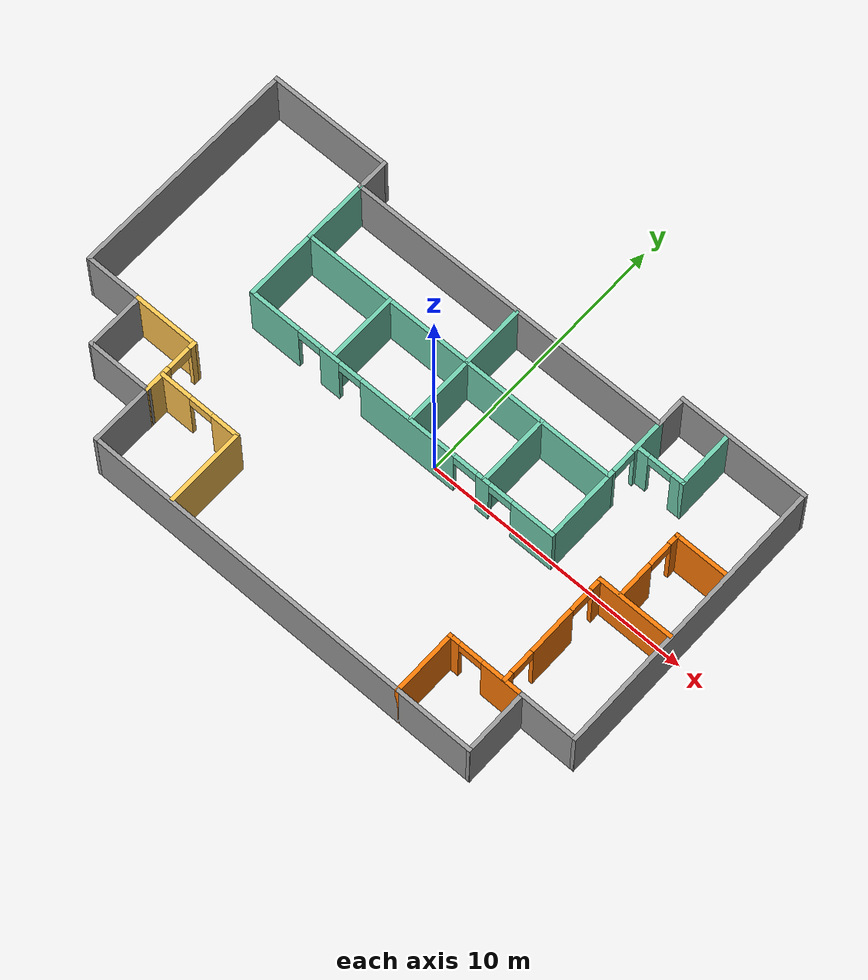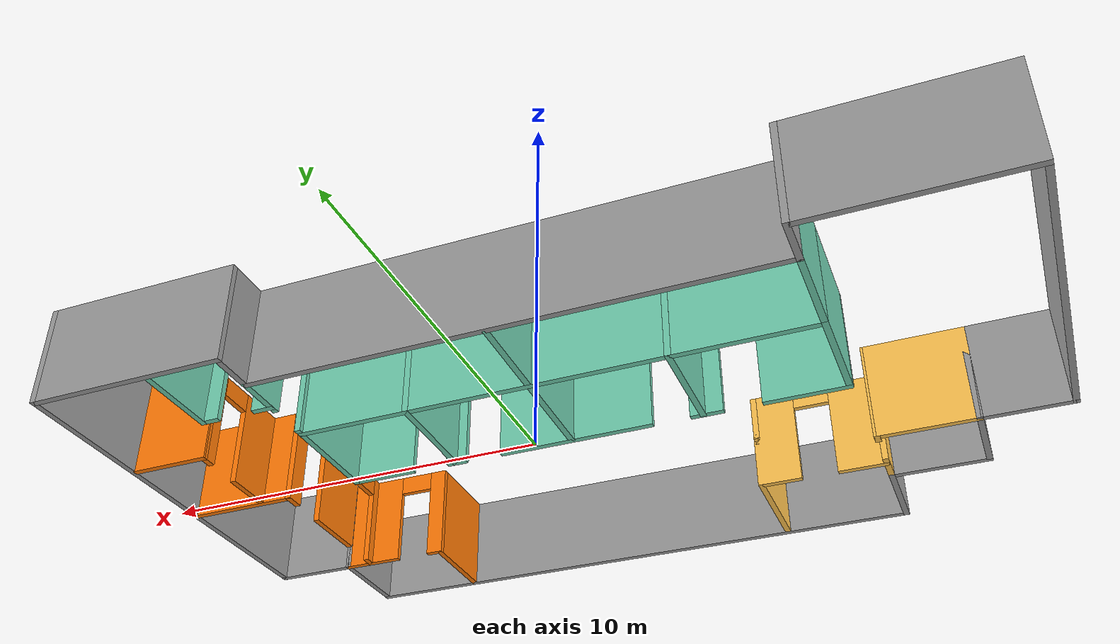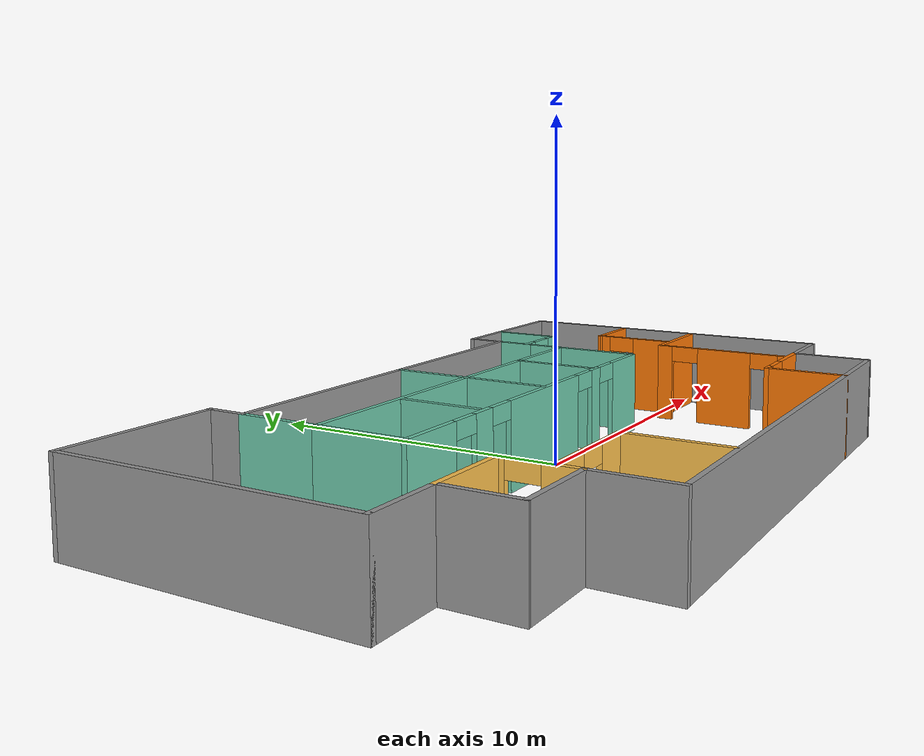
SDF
<?xml version='1.0'?>
<sdf version='1.6'>
  <model name='building'>
    <pose frame=''>-1.15045 -0.530763 0 0 -0 0</pose>
    <link name='Wall_0'>
      <collision name='Wall_0_Collision'>
        <geometry>
          <box>
            <size>15.25 0.15 2.5</size>
          </box>
        </geometry>
        <pose frame=''>0 0 1.25 0 -0 0</pose>
      </collision>
      <visual name='Wall_0_Visual'>
        <pose frame=''>0 0 1.25 0 -0 0</pose>
        <geometry>
          <box>
            <size>15.25 0.15 2.5</size>
          </box>
        </geometry>
        <material>
          <script>
            <uri>file://media/materials/scripts/gazebo.material</uri>
            <name>Gazebo/Grey</name>
          </script>
          <ambient>1 1 1 1</ambient>
        </material>
        <meta>
          <layer>0</layer>
        </meta>
      </visual>
      <pose frame=''>1.25 -6.47476 0 0 -0 0</pose>
    </link>
    <link name='Wall_10'>
      <collision name='Wall_10_Collision'>
        <geometry>
          <box>
            <size>4.75 0.15 2.5</size>
          </box>
        </geometry>
        <pose frame=''>0 0 1.25 0 -0 0</pose>
      </collision>
      <visual name='Wall_10_Visual'>
        <pose frame=''>0 0 1.25 0 -0 0</pose>
        <geometry>
          <box>
            <size>4.75 0.15 2.5</size>
          </box>
        </geometry>
        <material>
          <script>
            <uri>file://media/materials/scripts/gazebo.material</uri>
            <name>Gazebo/Grey</name>
          </script>
          <ambient>1 1 1 1</ambient>
        </material>
        <meta>
          <layer>0</layer>
        </meta>
      </visual>
      <pose frame=''>-8.6 6.47524 0 0 -0 3.14159</pose>
    </link>
    <link name='Wall_11'>
      <collision name='Wall_11_Collision'>
        <geometry>
          <box>
            <size>8.75 0.15 2.5</size>
          </box>
        </geometry>
        <pose frame=''>0 0 1.25 0 -0 0</pose>
      </collision>
      <visual name='Wall_11_Visual'>
        <pose frame=''>0 0 1.25 0 -0 0</pose>
        <geometry>
          <box>
            <size>8.75 0.15 2.5</size>
          </box>
        </geometry>
        <material>
          <script>
            <uri>file://media/materials/scripts/gazebo.material</uri>
            <name>Gazebo/Grey</name>
          </script>
          <ambient>1 1 1 1</ambient>
        </material>
        <meta>
          <layer>0</layer>
        </meta>
      </visual>
      <pose frame=''>-10.9 2.17524 0 0 0 -1.5708</pose>
    </link>
    <link name='Wall_16'>
      <collision name='Wall_16_Collision'>
        <geometry>
          <box>
            <size>2.25 0.15 2.5</size>
          </box>
        </geometry>
        <pose frame=''>0 0 1.25 0 -0 0</pose>
      </collision>
      <visual name='Wall_16_Visual'>
        <pose frame=''>0 0 1.25 0 -0 0</pose>
        <geometry>
          <box>
            <size>2.25 0.15 2.5</size>
          </box>
        </geometry>
        <material>
          <script>
            <uri>file://media/materials/scripts/gazebo.material</uri>
            <name>Gazebo/Grey</name>
          </script>
          <ambient>1 1 1 1</ambient>
        </material>
        <meta>
          <layer>0</layer>
        </meta>
      </visual>
      <pose frame=''>-9.85 -2.12476 0 0 -0 0</pose>
    </link>
    <link name='Wall_17'>
      <collision name='Wall_17_Collision'>
        <geometry>
          <box>
            <size>2.25 0.15 2.5</size>
          </box>
        </geometry>
        <pose frame=''>0 0 1.25 0 -0 0</pose>
      </collision>
      <visual name='Wall_17_Visual'>
        <pose frame=''>0 0 1.25 0 -0 0</pose>
        <geometry>
          <box>
            <size>2.25 0.15 2.5</size>
          </box>
        </geometry>
        <material>
          <script>
            <uri>file://media/materials/scripts/gazebo.material</uri>
            <name>Gazebo/Grey</name>
          </script>
          <ambient>1 1 1 1</ambient>
        </material>
        <meta>
          <layer>0</layer>
        </meta>
      </visual>
      <pose frame=''>-8.8 -3.17476 0 0 0 -1.5708</pose>
    </link>
    <link name='Wall_18'>
      <collision name='Wall_18_Collision'>
        <geometry>
          <box>
            <size>2.5 0.15 2.5</size>
          </box>
        </geometry>
        <pose frame=''>0 0 1.25 0 -0 0</pose>
      </collision>
      <visual name='Wall_18_Visual'>
        <pose frame=''>0 0 1.25 0 -0 0</pose>
        <geometry>
          <box>
            <size>2.5 0.15 2.5</size>
          </box>
        </geometry>
        <material>
          <script>
            <uri>file://media/materials/scripts/gazebo.material</uri>
            <name>Gazebo/Grey</name>
          </script>
          <ambient>1 1 1 1</ambient>
        </material>
        <meta>
          <layer>0</layer>
        </meta>
      </visual>
      <pose frame=''>-7.62478 -4.225 0 0 0 -0.000201</pose>
    </link>
    <link name='Wall_19'>
      <collision name='Wall_19_Collision'>
        <geometry>
          <box>
            <size>2.4 0.15 2.5</size>
          </box>
        </geometry>
        <pose frame=''>0 0 1.25 0 -0 0</pose>
      </collision>
      <visual name='Wall_19_Visual'>
        <pose frame=''>0 0 1.25 0 -0 0</pose>
        <geometry>
          <box>
            <size>2.4 0.15 2.5</size>
          </box>
        </geometry>
        <material>
          <script>
            <uri>file://media/materials/scripts/gazebo.material</uri>
            <name>Gazebo/Grey</name>
          </script>
          <ambient>1 1 1 1</ambient>
        </material>
        <meta>
          <layer>0</layer>
        </meta>
      </visual>
      <pose frame=''>-6.44955 -5.35024 0 0 0 -1.5708</pose>
    </link>
    <link name='Wall_21'>
      <pose frame=''>7.375 -4.12476 0 0 -0 3.14159</pose>
      <visual name='Wall_21_Visual_0'>
        <pose frame=''>-0.674221 0 1.25 0 -0 0</pose>
        <geometry>
          <box>
            <size>1.65156 0.15 2.5</size>
          </box>
        </geometry>
        <material>
          <script>
            <uri>file://media/materials/scripts/gazebo.material</uri>
            <name>Gazebo/Grey</name>
          </script>
          <ambient>0.996078 0.47451 0.0196078 1</ambient>
        </material>
        <meta>
          <layer>0</layer>
        </meta>
      </visual>
      <collision name='Wall_21_Collision_0'>
        <geometry>
          <box>
            <size>1.65156 0.15 2.5</size>
          </box>
        </geometry>
        <pose frame=''>-0.674221 0 1.25 0 -0 0</pose>
      </collision>
      <visual name='Wall_21_Visual_1'>
        <pose frame=''>1.27578 0 1.25 0 -0 0</pose>
        <geometry>
          <box>
            <size>0.448442 0.15 2.5</size>
          </box>
        </geometry>
        <material>
          <script>
            <uri>file://media/materials/scripts/gazebo.material</uri>
            <name>Gazebo/Grey</name>
          </script>
          <ambient>0.996078 0.47451 0.0196078 1</ambient>
        </material>
        <meta>
          <layer>0</layer>
        </meta>
      </visual>
      <collision name='Wall_21_Collision_1'>
        <geometry>
          <box>
            <size>0.448442 0.15 2.5</size>
          </box>
        </geometry>
        <pose frame=''>1.27578 0 1.25 0 -0 0</pose>
      </collision>
      <visual name='Wall_21_Visual_2'>
        <pose frame=''>0.601558 0 2.25 0 -0 0</pose>
        <geometry>
          <box>
            <size>0.9 0.15 0.5</size>
          </box>
        </geometry>
        <material>
          <script>
            <uri>file://media/materials/scripts/gazebo.material</uri>
            <name>Gazebo/Grey</name>
          </script>
          <ambient>0.996078 0.47451 0.0196078 1</ambient>
        </material>
        <meta>
          <layer>0</layer>
        </meta>
      </visual>
      <collision name='Wall_21_Collision_2'>
        <geometry>
          <box>
            <size>0.9 0.15 0.5</size>
          </box>
        </geometry>
        <pose frame=''>0.601558 0 2.25 0 -0 0</pose>
      </collision>
    </link>
    <link name='Wall_22'>
      <collision name='Wall_22_Collision'>
        <geometry>
          <box>
            <size>2.5 0.15 2.5</size>
          </box>
        </geometry>
        <pose frame=''>0 0 1.25 0 -0 0</pose>
      </collision>
      <visual name='Wall_22_Visual'>
        <pose frame=''>0 0 1.25 0 -0 0</pose>
        <geometry>
          <box>
            <size>2.5 0.15 2.5</size>
          </box>
        </geometry>
        <material>
          <script>
            <uri>file://media/materials/scripts/gazebo.material</uri>
            <name>Gazebo/Grey</name>
          </script>
          <ambient>0.996078 0.47451 0.0196078 1</ambient>
        </material>
        <meta>
          <layer>0</layer>
        </meta>
      </visual>
      <pose frame=''>5.95 -5.29976 0 0 0 -1.5708</pose>
    </link>
    <link name='Wall_24'>
      <pose frame=''>8.09845 -1.93009 0 0 -0 1.5708</pose>
      <visual name='Wall_24_Visual_0'>
        <pose frame=''>-2.05684 0 1.25 0 -0 0</pose>
        <geometry>
          <box>
            <size>0.386318 0.15 2.5</size>
          </box>
        </geometry>
        <material>
          <script>
            <uri>file://media/materials/scripts/gazebo.material</uri>
            <name>Gazebo/Grey</name>
          </script>
          <ambient>0.996078 0.47451 0.0196078 1</ambient>
        </material>
        <meta>
          <layer>0</layer>
        </meta>
      </visual>
      <collision name='Wall_24_Collision_0'>
        <geometry>
          <box>
            <size>0.386318 0.15 2.5</size>
          </box>
        </geometry>
        <pose frame=''>-2.05684 0 1.25 0 -0 0</pose>
      </collision>
      <visual name='Wall_24_Visual_1'>
        <pose frame=''>-0.061912 0 1.25 0 -0 0</pose>
        <geometry>
          <box>
            <size>1.80354 0.15 2.5</size>
          </box>
        </geometry>
        <material>
          <script>
            <uri>file://media/materials/scripts/gazebo.material</uri>
            <name>Gazebo/Grey</name>
          </script>
          <ambient>0.996078 0.47451 0.0196078 1</ambient>
        </material>
        <meta>
          <layer>0</layer>
        </meta>
      </visual>
      <collision name='Wall_24_Collision_1'>
        <geometry>
          <box>
            <size>1.80354 0.15 2.5</size>
          </box>
        </geometry>
        <pose frame=''>-0.061912 0 1.25 0 -0 0</pose>
      </collision>
      <visual name='Wall_24_Visual_2'>
        <pose frame=''>1.99493 0 1.25 0 -0 0</pose>
        <geometry>
          <box>
            <size>0.510142 0.15 2.5</size>
          </box>
        </geometry>
        <material>
          <script>
            <uri>file://media/materials/scripts/gazebo.material</uri>
            <name>Gazebo/Grey</name>
          </script>
          <ambient>0.996078 0.47451 0.0196078 1</ambient>
        </material>
        <meta>
          <layer>0</layer>
        </meta>
      </visual>
      <collision name='Wall_24_Collision_2'>
        <geometry>
          <box>
            <size>0.510142 0.15 2.5</size>
          </box>
        </geometry>
        <pose frame=''>1.99493 0 1.25 0 -0 0</pose>
      </collision>
      <visual name='Wall_24_Visual_3'>
        <pose frame=''>-1.41368 0 2.25 0 -0 0</pose>
        <geometry>
          <box>
            <size>0.9 0.15 0.5</size>
          </box>
        </geometry>
        <material>
          <script>
            <uri>file://media/materials/scripts/gazebo.material</uri>
            <name>Gazebo/Grey</name>
          </script>
          <ambient>0.996078 0.47451 0.0196078 1</ambient>
        </material>
        <meta>
          <layer>0</layer>
        </meta>
      </visual>
      <collision name='Wall_24_Collision_3'>
        <geometry>
          <box>
            <size>0.9 0.15 0.5</size>
          </box>
        </geometry>
        <pose frame=''>-1.41368 0 2.25 0 -0 0</pose>
      </collision>
      <visual name='Wall_24_Visual_4'>
        <pose frame=''>1.28986 0 2.25 0 -0 0</pose>
        <geometry>
          <box>
            <size>0.9 0.15 0.5</size>
          </box>
        </geometry>
        <material>
          <script>
            <uri>file://media/materials/scripts/gazebo.material</uri>
            <name>Gazebo/Grey</name>
          </script>
          <ambient>0.996078 0.47451 0.0196078 1</ambient>
        </material>
        <meta>
          <layer>0</layer>
        </meta>
      </visual>
      <collision name='Wall_24_Collision_4'>
        <geometry>
          <box>
            <size>0.9 0.15 0.5</size>
          </box>
        </geometry>
        <pose frame=''>1.28986 0 2.25 0 -0 0</pose>
      </collision>
    </link>
    <link name='Wall_25'>
      <collision name='Wall_25_Collision'>
        <geometry>
          <box>
            <size>2.902 0.15 2.5</size>
          </box>
        </geometry>
        <pose frame=''>0 0 1.25 0 -0 0</pose>
      </collision>
      <visual name='Wall_25_Visual'>
        <pose frame=''>0 0 1.25 0 -0 0</pose>
        <geometry>
          <box>
            <size>2.902 0.15 2.5</size>
          </box>
        </geometry>
        <material>
          <script>
            <uri>file://media/materials/scripts/gazebo.material</uri>
            <name>Gazebo/Grey</name>
          </script>
          <ambient>0.996078 0.47451 0.0196078 1</ambient>
        </material>
        <meta>
          <layer>0</layer>
        </meta>
      </visual>
      <pose frame=''>9.47445 0.244763 0 0 -0 0</pose>
    </link>
    <link name='Wall_27'>
      <pose frame=''>8.8886 1.58853 0 0 -0 1.57091</pose>
      <visual name='Wall_27_Visual_0'>
        <pose frame=''>-0.675117 0 1.25 0 -0 0</pose>
        <geometry>
          <box>
            <size>1.39976 0.15 2.5</size>
          </box>
        </geometry>
        <material>
          <script>
            <uri>file://media/materials/scripts/gazebo.material</uri>
            <name>Gazebo/Grey</name>
          </script>
          <ambient>0.996078 0.47451 0.0196078 1</ambient>
        </material>
        <meta>
          <layer>0</layer>
        </meta>
      </visual>
      <collision name='Wall_27_Collision_0'>
        <geometry>
          <box>
            <size>1.39976 0.15 2.5</size>
          </box>
        </geometry>
        <pose frame=''>-0.675117 0 1.25 0 -0 0</pose>
      </collision>
      <visual name='Wall_27_Visual_1'>
        <pose frame=''>1.14988 0 1.25 0 -0 0</pose>
        <geometry>
          <box>
            <size>0.450235 0.15 2.5</size>
          </box>
        </geometry>
        <material>
          <script>
            <uri>file://media/materials/scripts/gazebo.material</uri>
            <name>Gazebo/Grey</name>
          </script>
          <ambient>0.996078 0.47451 0.0196078 1</ambient>
        </material>
        <meta>
          <layer>0</layer>
        </meta>
      </visual>
      <collision name='Wall_27_Collision_1'>
        <geometry>
          <box>
            <size>0.450235 0.15 2.5</size>
          </box>
        </geometry>
        <pose frame=''>1.14988 0 1.25 0 -0 0</pose>
      </collision>
      <visual name='Wall_27_Visual_2'>
        <pose frame=''>0.474765 0 2.25 0 -0 0</pose>
        <geometry>
          <box>
            <size>0.9 0.15 0.5</size>
          </box>
        </geometry>
        <material>
          <script>
            <uri>file://media/materials/scripts/gazebo.material</uri>
            <name>Gazebo/Grey</name>
          </script>
          <ambient>0.996078 0.47451 0.0196078 1</ambient>
        </material>
        <meta>
          <layer>0</layer>
        </meta>
      </visual>
      <collision name='Wall_27_Collision_2'>
        <geometry>
          <box>
            <size>0.9 0.15 0.5</size>
          </box>
        </geometry>
        <pose frame=''>0.474765 0 2.25 0 -0 0</pose>
      </collision>
    </link>
    <link name='Wall_28'>
      <collision name='Wall_28_Collision'>
        <geometry>
          <box>
            <size>2.062 0.15 2.5</size>
          </box>
        </geometry>
        <pose frame=''>0 0 1.25 0 -0 0</pose>
      </collision>
      <visual name='Wall_28_Visual'>
        <pose frame=''>0 0 1.25 0 -0 0</pose>
        <geometry>
          <box>
            <size>2.062 0.15 2.5</size>
          </box>
        </geometry>
        <material>
          <script>
            <uri>file://media/materials/scripts/gazebo.material</uri>
            <name>Gazebo/Grey</name>
          </script>
          <ambient>0.996078 0.47451 0.0196078 1</ambient>
        </material>
        <meta>
          <layer>0</layer>
        </meta>
      </visual>
      <pose frame=''>9.84445 2.88876 0 0 -0 0</pose>
    </link>
    <link name='Wall_3'>
      <collision name='Wall_3_Collision'>
        <geometry>
          <box>
            <size>2.5 0.15 2.5</size>
          </box>
        </geometry>
        <pose frame=''>0 0 1.25 0 -0 0</pose>
      </collision>
      <visual name='Wall_3_Visual'>
        <pose frame=''>0 0 1.25 0 -0 0</pose>
        <geometry>
          <box>
            <size>2.5 0.15 2.5</size>
          </box>
        </geometry>
        <material>
          <script>
            <uri>file://media/materials/scripts/gazebo.material</uri>
            <name>Gazebo/Grey</name>
          </script>
          <ambient>1 1 1 1</ambient>
        </material>
        <meta>
          <layer>0</layer>
        </meta>
      </visual>
      <pose frame=''>8.8 -5.29976 0 0 -0 1.5708</pose>
    </link>
    <link name='Wall_36'>
      <pose frame=''>6.05 4.20024 0 0 0 -1.5708</pose>
      <visual name='Wall_36_Visual_0'>
        <pose frame=''>-0.588316 0 1.25 0 -0 0</pose>
        <geometry>
          <box>
            <size>1.32337 0.15 2.5</size>
          </box>
        </geometry>
        <material>
          <script>
            <uri>file://media/materials/scripts/gazebo.material</uri>
            <name>Gazebo/Grey</name>
          </script>
          <ambient>0.435294 0.796078 0.67451 1</ambient>
        </material>
        <meta>
          <layer>0</layer>
        </meta>
      </visual>
      <collision name='Wall_36_Collision_0'>
        <geometry>
          <box>
            <size>1.32337 0.15 2.5</size>
          </box>
        </geometry>
        <pose frame=''>-0.588316 0 1.25 0 -0 0</pose>
      </collision>
      <visual name='Wall_36_Visual_1'>
        <pose frame=''>1.11168 0 1.25 0 -0 0</pose>
        <geometry>
          <box>
            <size>0.276631 0.15 2.5</size>
          </box>
        </geometry>
        <material>
          <script>
            <uri>file://media/materials/scripts/gazebo.material</uri>
            <name>Gazebo/Grey</name>
          </script>
          <ambient>0.435294 0.796078 0.67451 1</ambient>
        </material>
        <meta>
          <layer>0</layer>
        </meta>
      </visual>
      <collision name='Wall_36_Collision_1'>
        <geometry>
          <box>
            <size>0.276631 0.15 2.5</size>
          </box>
        </geometry>
        <pose frame=''>1.11168 0 1.25 0 -0 0</pose>
      </collision>
      <visual name='Wall_36_Visual_2'>
        <pose frame=''>0.523369 0 2.25 0 -0 0</pose>
        <geometry>
          <box>
            <size>0.9 0.15 0.5</size>
          </box>
        </geometry>
        <material>
          <script>
            <uri>file://media/materials/scripts/gazebo.material</uri>
            <name>Gazebo/Grey</name>
          </script>
          <ambient>0.435294 0.796078 0.67451 1</ambient>
        </material>
        <meta>
          <layer>0</layer>
        </meta>
      </visual>
      <collision name='Wall_36_Collision_2'>
        <geometry>
          <box>
            <size>0.9 0.15 0.5</size>
          </box>
        </geometry>
        <pose frame=''>0.523369 0 2.25 0 -0 0</pose>
      </collision>
    </link>
    <link name='Wall_37'>
      <collision name='Wall_37_Collision'>
        <geometry>
          <box>
            <size>12.5 0.15 2.5</size>
          </box>
        </geometry>
        <pose frame=''>0 0 1.25 0 -0 0</pose>
      </collision>
      <visual name='Wall_37_Visual'>
        <pose frame=''>0 0 1.25 0 -0 0</pose>
        <geometry>
          <box>
            <size>12.5 0.15 2.5</size>
          </box>
        </geometry>
        <material>
          <script>
            <uri>file://media/materials/scripts/gazebo.material</uri>
            <name>Gazebo/Grey</name>
          </script>
          <ambient>0.435294 0.796078 0.67451 1</ambient>
        </material>
        <meta>
          <layer>0</layer>
        </meta>
      </visual>
      <pose frame=''>-0.125 3.02524 0 0 -0 3.14159</pose>
    </link>
    <link name='Wall_38'>
      <collision name='Wall_38_Collision'>
        <geometry>
          <box>
            <size>2.5 0.15 2.5</size>
          </box>
        </geometry>
        <pose frame=''>0 0 1.25 0 -0 0</pose>
      </collision>
      <visual name='Wall_38_Visual'>
        <pose frame=''>0 0 1.25 0 -0 0</pose>
        <geometry>
          <box>
            <size>2.5 0.15 2.5</size>
          </box>
        </geometry>
        <material>
          <script>
            <uri>file://media/materials/scripts/gazebo.material</uri>
            <name>Gazebo/Grey</name>
          </script>
          <ambient>0.435294 0.796078 0.67451 1</ambient>
        </material>
        <meta>
          <layer>0</layer>
        </meta>
      </visual>
      <pose frame=''>-6.3 4.20024 0 0 -0 1.5708</pose>
    </link>
    <link name='Wall_4'>
      <collision name='Wall_4_Collision'>
        <geometry>
          <box>
            <size>2.25 0.15 2.5</size>
          </box>
        </geometry>
        <pose frame=''>0 0 1.25 0 -0 0</pose>
      </collision>
      <visual name='Wall_4_Visual'>
        <pose frame=''>0 0 1.25 0 -0 0</pose>
        <geometry>
          <box>
            <size>2.25 0.15 2.5</size>
          </box>
        </geometry>
        <material>
          <script>
            <uri>file://media/materials/scripts/gazebo.material</uri>
            <name>Gazebo/Grey</name>
          </script>
          <ambient>1 1 1 1</ambient>
        </material>
        <meta>
          <layer>0</layer>
        </meta>
      </visual>
      <pose frame=''>9.85 -4.12476 0 0 -0 0</pose>
    </link>
    <link name='Wall_40'>
      <collision name='Wall_40_Collision'>
        <geometry>
          <box>
            <size>2.7676 0.15 2.5</size>
          </box>
        </geometry>
        <pose frame=''>0 0 1.25 0 -0 0</pose>
      </collision>
      <visual name='Wall_40_Visual'>
        <pose frame=''>0 0 1.25 0 -0 0</pose>
        <geometry>
          <box>
            <size>2.7676 0.15 2.5</size>
          </box>
        </geometry>
        <material>
          <script>
            <uri>file://media/materials/scripts/gazebo.material</uri>
            <name>Gazebo/Grey</name>
          </script>
          <ambient>0.435294 0.796078 0.67451 1</ambient>
        </material>
        <meta>
          <layer>0</layer>
        </meta>
      </visual>
      <pose frame=''>6.05 1.71644 0 0 0 -1.5708</pose>
    </link>
    <link name='Wall_41'>
      <pose frame=''>-0.125 0.388523 0 0 -0 3.14159</pose>
      <visual name='Wall_41_Visual_0'>
        <pose frame=''>-5.40531 0 1.25 0 -0 0</pose>
        <geometry>
          <box>
            <size>1.68939 0.15 2.5</size>
          </box>
        </geometry>
        <material>
          <script>
            <uri>file://media/materials/scripts/gazebo.material</uri>
            <name>Gazebo/Grey</name>
          </script>
          <ambient>0.435294 0.796078 0.67451 1</ambient>
        </material>
        <meta>
          <layer>0</layer>
        </meta>
      </visual>
      <collision name='Wall_41_Collision_0'>
        <geometry>
          <box>
            <size>1.68939 0.15 2.5</size>
          </box>
        </geometry>
        <pose frame=''>-5.40531 0 1.25 0 -0 0</pose>
      </collision>
      <visual name='Wall_41_Visual_1'>
        <pose frame=''>-3.39519 0 1.25 0 -0 0</pose>
        <geometry>
          <box>
            <size>0.530856 0.15 2.5</size>
          </box>
        </geometry>
        <material>
          <script>
            <uri>file://media/materials/scripts/gazebo.material</uri>
            <name>Gazebo/Grey</name>
          </script>
          <ambient>0.435294 0.796078 0.67451 1</ambient>
        </material>
        <meta>
          <layer>0</layer>
        </meta>
      </visual>
      <collision name='Wall_41_Collision_1'>
        <geometry>
          <box>
            <size>0.530856 0.15 2.5</size>
          </box>
        </geometry>
        <pose frame=''>-3.39519 0 1.25 0 -0 0</pose>
      </collision>
      <visual name='Wall_41_Visual_2'>
        <pose frame=''>-0.305838 0 1.25 0 -0 0</pose>
        <geometry>
          <box>
            <size>3.84784 0.15 2.5</size>
          </box>
        </geometry>
        <material>
          <script>
            <uri>file://media/materials/scripts/gazebo.material</uri>
            <name>Gazebo/Grey</name>
          </script>
          <ambient>0.435294 0.796078 0.67451 1</ambient>
        </material>
        <meta>
          <layer>0</layer>
        </meta>
      </visual>
      <collision name='Wall_41_Collision_2'>
        <geometry>
          <box>
            <size>3.84784 0.15 2.5</size>
          </box>
        </geometry>
        <pose frame=''>-0.305838 0 1.25 0 -0 0</pose>
      </collision>
      <visual name='Wall_41_Visual_3'>
        <pose frame=''>2.91359 0 1.25 0 -0 0</pose>
        <geometry>
          <box>
            <size>0.791011 0.15 2.5</size>
          </box>
        </geometry>
        <material>
          <script>
            <uri>file://media/materials/scripts/gazebo.material</uri>
            <name>Gazebo/Grey</name>
          </script>
          <ambient>0.435294 0.796078 0.67451 1</ambient>
        </material>
        <meta>
          <layer>0</layer>
        </meta>
      </visual>
      <collision name='Wall_41_Collision_3'>
        <geometry>
          <box>
            <size>0.791011 0.15 2.5</size>
          </box>
        </geometry>
        <pose frame=''>2.91359 0 1.25 0 -0 0</pose>
      </collision>
      <visual name='Wall_41_Visual_4'>
        <pose frame=''>5.22955 0 1.25 0 -0 0</pose>
        <geometry>
          <box>
            <size>2.04091 0.15 2.5</size>
          </box>
        </geometry>
        <material>
          <script>
            <uri>file://media/materials/scripts/gazebo.material</uri>
            <name>Gazebo/Grey</name>
          </script>
          <ambient>0.435294 0.796078 0.67451 1</ambient>
        </material>
        <meta>
          <layer>0</layer>
        </meta>
      </visual>
      <collision name='Wall_41_Collision_4'>
        <geometry>
          <box>
            <size>2.04091 0.15 2.5</size>
          </box>
        </geometry>
        <pose frame=''>5.22955 0 1.25 0 -0 0</pose>
      </collision>
      <visual name='Wall_41_Visual_5'>
        <pose frame=''>-4.11061 0 2.25 0 -0 0</pose>
        <geometry>
          <box>
            <size>0.9 0.15 0.5</size>
          </box>
        </geometry>
        <material>
          <script>
            <uri>file://media/materials/scripts/gazebo.material</uri>
            <name>Gazebo/Grey</name>
          </script>
          <ambient>0.435294 0.796078 0.67451 1</ambient>
        </material>
        <meta>
          <layer>0</layer>
        </meta>
      </visual>
      <collision name='Wall_41_Collision_5'>
        <geometry>
          <box>
            <size>0.9 0.15 0.5</size>
          </box>
        </geometry>
        <pose frame=''>-4.11061 0 2.25 0 -0 0</pose>
      </collision>
      <visual name='Wall_41_Visual_6'>
        <pose frame=''>-2.67976 0 2.25 0 -0 0</pose>
        <geometry>
          <box>
            <size>0.9 0.15 0.5</size>
          </box>
        </geometry>
        <material>
          <script>
            <uri>file://media/materials/scripts/gazebo.material</uri>
            <name>Gazebo/Grey</name>
          </script>
          <ambient>0.435294 0.796078 0.67451 1</ambient>
        </material>
        <meta>
          <layer>0</layer>
        </meta>
      </visual>
      <collision name='Wall_41_Collision_6'>
        <geometry>
          <box>
            <size>0.9 0.15 0.5</size>
          </box>
        </geometry>
        <pose frame=''>-2.67976 0 2.25 0 -0 0</pose>
      </collision>
      <visual name='Wall_41_Visual_7'>
        <pose frame=''>2.06808 0 2.25 0 -0 0</pose>
        <geometry>
          <box>
            <size>0.9 0.15 0.5</size>
          </box>
        </geometry>
        <material>
          <script>
            <uri>file://media/materials/scripts/gazebo.material</uri>
            <name>Gazebo/Grey</name>
          </script>
          <ambient>0.435294 0.796078 0.67451 1</ambient>
        </material>
        <meta>
          <layer>0</layer>
        </meta>
      </visual>
      <collision name='Wall_41_Collision_7'>
        <geometry>
          <box>
            <size>0.9 0.15 0.5</size>
          </box>
        </geometry>
        <pose frame=''>2.06808 0 2.25 0 -0 0</pose>
      </collision>
      <visual name='Wall_41_Visual_8'>
        <pose frame=''>3.75909 0 2.25 0 -0 0</pose>
        <geometry>
          <box>
            <size>0.9 0.15 0.5</size>
          </box>
        </geometry>
        <material>
          <script>
            <uri>file://media/materials/scripts/gazebo.material</uri>
            <name>Gazebo/Grey</name>
          </script>
          <ambient>0.435294 0.796078 0.67451 1</ambient>
        </material>
        <meta>
          <layer>0</layer>
        </meta>
      </visual>
      <collision name='Wall_41_Collision_8'>
        <geometry>
          <box>
            <size>0.9 0.15 0.5</size>
          </box>
        </geometry>
        <pose frame=''>3.75909 0 2.25 0 -0 0</pose>
      </collision>
    </link>
    <link name='Wall_42'>
      <collision name='Wall_42_Collision'>
        <geometry>
          <box>
            <size>2.7676 0.15 2.5</size>
          </box>
        </geometry>
        <pose frame=''>0 0 1.25 0 -0 0</pose>
      </collision>
      <visual name='Wall_42_Visual'>
        <pose frame=''>0 0 1.25 0 -0 0</pose>
        <geometry>
          <box>
            <size>2.7676 0.15 2.5</size>
          </box>
        </geometry>
        <material>
          <script>
            <uri>file://media/materials/scripts/gazebo.material</uri>
            <name>Gazebo/Grey</name>
          </script>
          <ambient>0.435294 0.796078 0.67451 1</ambient>
        </material>
        <meta>
          <layer>0</layer>
        </meta>
      </visual>
      <pose frame=''>-6.3 1.71644 0 0 -0 1.5708</pose>
    </link>
    <link name='Wall_44'>
      <collision name='Wall_44_Collision'>
        <geometry>
          <box>
            <size>5 0.15 2.5</size>
          </box>
        </geometry>
        <pose frame=''>0 0 1.25 0 -0 0</pose>
      </collision>
      <visual name='Wall_44_Visual'>
        <pose frame=''>0 0 1.25 0 -0 0</pose>
        <geometry>
          <box>
            <size>5 0.15 2.5</size>
          </box>
        </geometry>
        <material>
          <script>
            <uri>file://media/materials/scripts/gazebo.material</uri>
            <name>Gazebo/Grey</name>
          </script>
          <ambient>0.435294 0.796078 0.67451 1</ambient>
        </material>
        <meta>
          <layer>0</layer>
        </meta>
      </visual>
      <pose frame=''>0.267974 2.87546 0 0 0 -1.5708</pose>
    </link>
    <link name='Wall_47'>
      <collision name='Wall_47_Collision'>
        <geometry>
          <box>
            <size>2.75 0.15 2.5</size>
          </box>
        </geometry>
        <pose frame=''>0 0 1.25 0 -0 0</pose>
      </collision>
      <visual name='Wall_47_Visual'>
        <pose frame=''>0 0 1.25 0 -0 0</pose>
        <geometry>
          <box>
            <size>2.75 0.15 2.5</size>
          </box>
        </geometry>
        <material>
          <script>
            <uri>file://media/materials/scripts/gazebo.material</uri>
            <name>Gazebo/Grey</name>
          </script>
          <ambient>0.435294 0.796078 0.67451 1</ambient>
        </material>
        <meta>
          <layer>0</layer>
        </meta>
      </visual>
      <pose frame=''>-2.94321 1.72586 0 0 0 -1.5708</pose>
    </link>
    <link name='Wall_5'>
      <collision name='Wall_5_Collision'>
        <geometry>
          <box>
            <size>10.75 0.15 2.5</size>
          </box>
        </geometry>
        <pose frame=''>0 0 1.25 0 -0 0</pose>
      </collision>
      <visual name='Wall_5_Visual'>
        <pose frame=''>0 0 1.25 0 -0 0</pose>
        <geometry>
          <box>
            <size>10.75 0.15 2.5</size>
          </box>
        </geometry>
        <material>
          <script>
            <uri>file://media/materials/scripts/gazebo.material</uri>
            <name>Gazebo/Grey</name>
          </script>
          <ambient>1 1 1 1</ambient>
        </material>
        <meta>
          <layer>0</layer>
        </meta>
      </visual>
      <pose frame=''>10.9 1.17524 0 0 -0 1.5708</pose>
    </link>
    <link name='Wall_50'>
      <collision name='Wall_50_Collision'>
        <geometry>
          <box>
            <size>2.75 0.15 2.5</size>
          </box>
        </geometry>
        <pose frame=''>0 0 1.25 0 -0 0</pose>
      </collision>
      <visual name='Wall_50_Visual'>
        <pose frame=''>0 0 1.25 0 -0 0</pose>
        <geometry>
          <box>
            <size>2.75 0.15 2.5</size>
          </box>
        </geometry>
        <material>
          <script>
            <uri>file://media/materials/scripts/gazebo.material</uri>
            <name>Gazebo/Grey</name>
          </script>
          <ambient>0.435294 0.796078 0.67451 1</ambient>
        </material>
        <meta>
          <layer>0</layer>
        </meta>
      </visual>
      <pose frame=''>3.30713 1.72586 0 0 0 -1.5708</pose>
    </link>
    <link name='Wall_52'>
      <collision name='Wall_52_Collision'>
        <geometry>
          <box>
            <size>2.5 0.15 2.5</size>
          </box>
        </geometry>
        <pose frame=''>0 0 1.25 0 -0 0</pose>
      </collision>
      <visual name='Wall_52_Visual'>
        <pose frame=''>0 0 1.25 0 -0 0</pose>
        <geometry>
          <box>
            <size>2.5 0.15 2.5</size>
          </box>
        </geometry>
        <material>
          <script>
            <uri>file://media/materials/scripts/gazebo.material</uri>
            <name>Gazebo/Grey</name>
          </script>
          <ambient>1 0.764706 0.305882 1</ambient>
        </material>
        <meta>
          <layer>0</layer>
        </meta>
      </visual>
      <pose frame=''>-7.625 -2.12476 0 0 -0 0</pose>
    </link>
    <link name='Wall_53'>
      <pose frame=''>-6.44978 -3.175 0 0 0 -1.57058</pose>
      <visual name='Wall_53_Visual_0'>
        <pose frame=''>-0.973972 0 1.25 0 -0 0</pose>
        <geometry>
          <box>
            <size>0.302529 0.15 2.5</size>
          </box>
        </geometry>
        <material>
          <script>
            <uri>file://media/materials/scripts/gazebo.material</uri>
            <name>Gazebo/Grey</name>
          </script>
          <ambient>1 0.764706 0.305882 1</ambient>
        </material>
        <meta>
          <layer>0</layer>
        </meta>
      </visual>
      <collision name='Wall_53_Collision_0'>
        <geometry>
          <box>
            <size>0.302529 0.15 2.5</size>
          </box>
        </geometry>
        <pose frame=''>-0.973972 0 1.25 0 -0 0</pose>
      </collision>
      <visual name='Wall_53_Visual_1'>
        <pose frame=''>0.601265 0 1.25 0 -0 0</pose>
        <geometry>
          <box>
            <size>1.04794 0.15 2.5</size>
          </box>
        </geometry>
        <material>
          <script>
            <uri>file://media/materials/scripts/gazebo.material</uri>
            <name>Gazebo/Grey</name>
          </script>
          <ambient>1 0.764706 0.305882 1</ambient>
        </material>
        <meta>
          <layer>0</layer>
        </meta>
      </visual>
      <collision name='Wall_53_Collision_1'>
        <geometry>
          <box>
            <size>1.04794 0.15 2.5</size>
          </box>
        </geometry>
        <pose frame=''>0.601265 0 1.25 0 -0 0</pose>
      </collision>
      <visual name='Wall_53_Visual_2'>
        <pose frame=''>-0.372707 0 2.25 0 -0 0</pose>
        <geometry>
          <box>
            <size>0.9 0.15 0.5</size>
          </box>
        </geometry>
        <material>
          <script>
            <uri>file://media/materials/scripts/gazebo.material</uri>
            <name>Gazebo/Grey</name>
          </script>
          <ambient>1 0.764706 0.305882 1</ambient>
        </material>
        <meta>
          <layer>0</layer>
        </meta>
      </visual>
      <collision name='Wall_53_Collision_2'>
        <geometry>
          <box>
            <size>0.9 0.15 0.5</size>
          </box>
        </geometry>
        <pose frame=''>-0.372707 0 2.25 0 -0 0</pose>
      </collision>
    </link>
    <link name='Wall_55'>
      <pose frame=''>-4.87602 -3.53882 0 0 -0 0</pose>
      <visual name='Wall_55_Visual_0'>
        <pose frame=''>-1.00296 0 1.25 0 -0 0</pose>
        <geometry>
          <box>
            <size>1.24408 0.15 2.5</size>
          </box>
        </geometry>
        <material>
          <script>
            <uri>file://media/materials/scripts/gazebo.material</uri>
            <name>Gazebo/Grey</name>
          </script>
          <ambient>1 0.764706 0.305882 1</ambient>
        </material>
        <meta>
          <layer>0</layer>
        </meta>
      </visual>
      <collision name='Wall_55_Collision_0'>
        <geometry>
          <box>
            <size>1.24408 0.15 2.5</size>
          </box>
        </geometry>
        <pose frame=''>-1.00296 0 1.25 0 -0 0</pose>
      </collision>
      <visual name='Wall_55_Visual_1'>
        <pose frame=''>1.07204 0 1.25 0 -0 0</pose>
        <geometry>
          <box>
            <size>1.10592 0.15 2.5</size>
          </box>
        </geometry>
        <material>
          <script>
            <uri>file://media/materials/scripts/gazebo.material</uri>
            <name>Gazebo/Grey</name>
          </script>
          <ambient>1 0.764706 0.305882 1</ambient>
        </material>
        <meta>
          <layer>0</layer>
        </meta>
      </visual>
      <collision name='Wall_55_Collision_1'>
        <geometry>
          <box>
            <size>1.10592 0.15 2.5</size>
          </box>
        </geometry>
        <pose frame=''>1.07204 0 1.25 0 -0 0</pose>
      </collision>
      <visual name='Wall_55_Visual_2'>
        <pose frame=''>0.069084 0 2.25 0 -0 0</pose>
        <geometry>
          <box>
            <size>0.9 0.15 0.5</size>
          </box>
        </geometry>
        <material>
          <script>
            <uri>file://media/materials/scripts/gazebo.material</uri>
            <name>Gazebo/Grey</name>
          </script>
          <ambient>1 0.764706 0.305882 1</ambient>
        </material>
        <meta>
          <layer>0</layer>
        </meta>
      </visual>
      <collision name='Wall_55_Collision_2'>
        <geometry>
          <box>
            <size>0.9 0.15 0.5</size>
          </box>
        </geometry>
        <pose frame=''>0.069084 0 2.25 0 -0 0</pose>
      </collision>
    </link>
    <link name='Wall_56'>
      <collision name='Wall_56_Collision'>
        <geometry>
          <box>
            <size>3 0.15 2.5</size>
          </box>
        </geometry>
        <pose frame=''>0 0 1.25 0 -0 0</pose>
      </collision>
      <visual name='Wall_56_Visual'>
        <pose frame=''>0 0 1.25 0 -0 0</pose>
        <geometry>
          <box>
            <size>3 0.15 2.5</size>
          </box>
        </geometry>
        <material>
          <script>
            <uri>file://media/materials/scripts/gazebo.material</uri>
            <name>Gazebo/Grey</name>
          </script>
          <ambient>1 0.764706 0.305882 1</ambient>
        </material>
        <meta>
          <layer>0</layer>
        </meta>
      </visual>
      <pose frame=''>-3.32602 -4.96382 0 0 0 -1.5708</pose>
    </link>
    <link name='Wall_58'>
      <pose frame=''>6.96275 4.33258 0 0 -0 0</pose>
      <visual name='Wall_58_Visual_0'>
        <pose frame=''>-0.699819 0 1.25 0 -0 0</pose>
        <geometry>
          <box>
            <size>0.559396 0.15 2.5</size>
          </box>
        </geometry>
        <material>
          <script>
            <uri>file://media/materials/scripts/gazebo.material</uri>
            <name>Gazebo/Grey</name>
          </script>
          <ambient>0.435294 0.796078 0.67451 1</ambient>
        </material>
        <meta>
          <layer>0</layer>
        </meta>
      </visual>
      <collision name='Wall_58_Collision_0'>
        <geometry>
          <box>
            <size>0.559396 0.15 2.5</size>
          </box>
        </geometry>
        <pose frame=''>-0.699819 0 1.25 0 -0 0</pose>
      </collision>
      <visual name='Wall_58_Visual_1'>
        <pose frame=''>0.729698 0 1.25 0 -0 0</pose>
        <geometry>
          <box>
            <size>0.499637 0.15 2.5</size>
          </box>
        </geometry>
        <material>
          <script>
            <uri>file://media/materials/scripts/gazebo.material</uri>
            <name>Gazebo/Grey</name>
          </script>
          <ambient>0.435294 0.796078 0.67451 1</ambient>
        </material>
        <meta>
          <layer>0</layer>
        </meta>
      </visual>
      <collision name='Wall_58_Collision_1'>
        <geometry>
          <box>
            <size>0.499637 0.15 2.5</size>
          </box>
        </geometry>
        <pose frame=''>0.729698 0 1.25 0 -0 0</pose>
      </collision>
      <visual name='Wall_58_Visual_2'>
        <pose frame=''>0.02988 0 2.25 0 -0 0</pose>
        <geometry>
          <box>
            <size>0.9 0.15 0.5</size>
          </box>
        </geometry>
        <material>
          <script>
            <uri>file://media/materials/scripts/gazebo.material</uri>
            <name>Gazebo/Grey</name>
          </script>
          <ambient>0.435294 0.796078 0.67451 1</ambient>
        </material>
        <meta>
          <layer>0</layer>
        </meta>
      </visual>
      <collision name='Wall_58_Collision_2'>
        <geometry>
          <box>
            <size>0.9 0.15 0.5</size>
          </box>
        </geometry>
        <pose frame=''>0.02988 0 2.25 0 -0 0</pose>
      </collision>
    </link>
    <link name='Wall_59'>
      <collision name='Wall_59_Collision'>
        <geometry>
          <box>
            <size>2.25 0.15 2.5</size>
          </box>
        </geometry>
        <pose frame=''>0 0 1.25 0 -0 0</pose>
      </collision>
      <visual name='Wall_59_Visual'>
        <pose frame=''>0 0 1.25 0 -0 0</pose>
        <geometry>
          <box>
            <size>2.25 0.15 2.5</size>
          </box>
        </geometry>
        <material>
          <script>
            <uri>file://media/materials/scripts/gazebo.material</uri>
            <name>Gazebo/Grey</name>
          </script>
          <ambient>0.435294 0.796078 0.67451 1</ambient>
        </material>
        <meta>
          <layer>0</layer>
        </meta>
      </visual>
      <pose frame=''>7.88366 5.38258 0 0 -0 1.5708</pose>
    </link>
    <link name='Wall_6'>
      <collision name='Wall_6_Collision'>
        <geometry>
          <box>
            <size>5 0.15 2.5</size>
          </box>
        </geometry>
        <pose frame=''>0 0 1.25 0 -0 0</pose>
      </collision>
      <visual name='Wall_6_Visual'>
        <pose frame=''>0 0 1.25 0 -0 0</pose>
        <geometry>
          <box>
            <size>5 0.15 2.5</size>
          </box>
        </geometry>
        <material>
          <script>
            <uri>file://media/materials/scripts/gazebo.material</uri>
            <name>Gazebo/Grey</name>
          </script>
          <ambient>1 1 1 1</ambient>
        </material>
        <meta>
          <layer>0</layer>
        </meta>
      </visual>
      <pose frame=''>8.475 6.47524 0 0 -0 3.14159</pose>
    </link>
    <link name='Wall_7'>
      <collision name='Wall_7_Collision'>
        <geometry>
          <box>
            <size>1.25 0.15 2.5</size>
          </box>
        </geometry>
        <pose frame=''>0 0 1.25 0 -0 0</pose>
      </collision>
      <visual name='Wall_7_Visual'>
        <pose frame=''>0 0 1.25 0 -0 0</pose>
        <geometry>
          <box>
            <size>1.25 0.15 2.5</size>
          </box>
        </geometry>
        <material>
          <script>
            <uri>file://media/materials/scripts/gazebo.material</uri>
            <name>Gazebo/Grey</name>
          </script>
          <ambient>1 1 1 1</ambient>
        </material>
        <meta>
          <layer>0</layer>
        </meta>
      </visual>
      <pose frame=''>6.05 5.92524 0 0 0 -1.5708</pose>
    </link>
    <link name='Wall_8'>
      <collision name='Wall_8_Collision'>
        <geometry>
          <box>
            <size>12.5 0.15 2.5</size>
          </box>
        </geometry>
        <pose frame=''>0 0 1.25 0 -0 0</pose>
      </collision>
      <visual name='Wall_8_Visual'>
        <pose frame=''>0 0 1.25 0 -0 0</pose>
        <geometry>
          <box>
            <size>12.5 0.15 2.5</size>
          </box>
        </geometry>
        <material>
          <script>
            <uri>file://media/materials/scripts/gazebo.material</uri>
            <name>Gazebo/Grey</name>
          </script>
          <ambient>1 1 1 1</ambient>
        </material>
        <meta>
          <layer>0</layer>
        </meta>
      </visual>
      <pose frame=''>-0.125 5.37524 0 0 -0 3.14159</pose>
    </link>
    <link name='Wall_9'>
      <collision name='Wall_9_Collision'>
        <geometry>
          <box>
            <size>1.25 0.15 2.5</size>
          </box>
        </geometry>
        <pose frame=''>0 0 1.25 0 -0 0</pose>
      </collision>
      <visual name='Wall_9_Visual'>
        <pose frame=''>0 0 1.25 0 -0 0</pose>
        <geometry>
          <box>
            <size>1.25 0.15 2.5</size>
          </box>
        </geometry>
        <material>
          <script>
            <uri>file://media/materials/scripts/gazebo.material</uri>
            <name>Gazebo/Grey</name>
          </script>
          <ambient>1 1 1 1</ambient>
        </material>
        <meta>
          <layer>0</layer>
        </meta>
      </visual>
      <pose frame=''>-6.3 5.92524 0 0 -0 1.5708</pose>
    </link>
    <static>1</static>
  </model>
</sdf>
